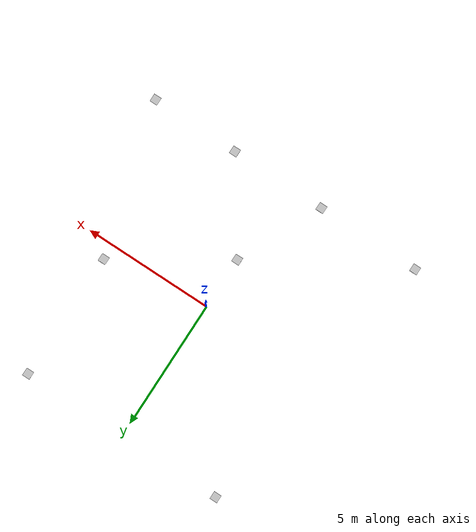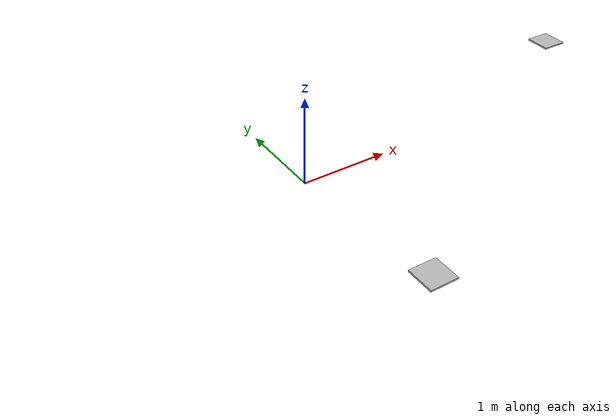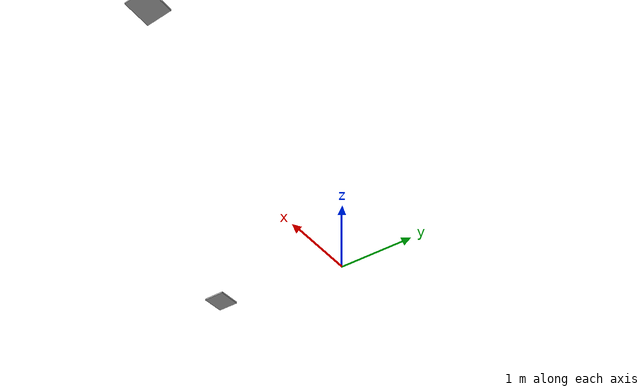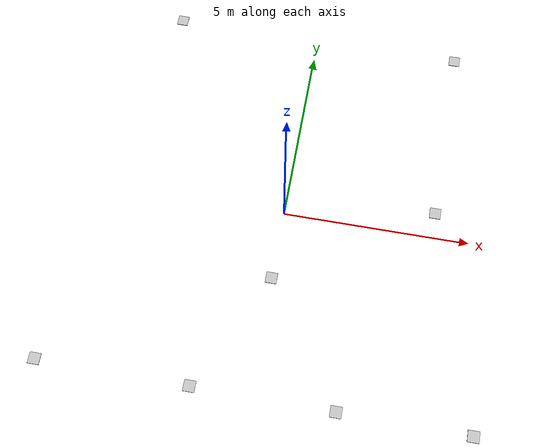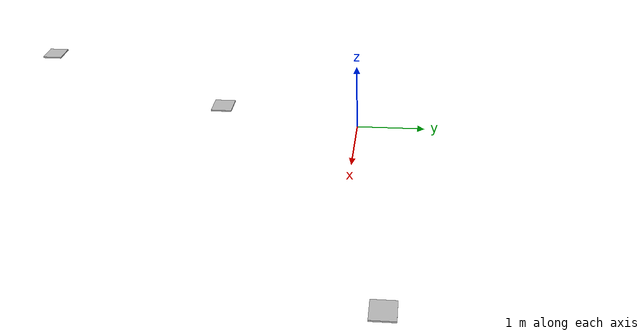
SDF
<?xml version="1.0"?>
<sdf version="1.5">
    <model name="qr">
        <static>true</static>
        <link name="link">
            <collision name="collision1">
                <pose>-4 5.5 0.27 0 0 0</pose>
                <geometry>
                    <mesh>
                        <uri>model://qr_1/meshes/qr.stl</uri>
                    </mesh>
                </geometry>
            </collision>
            <visual name="visual1">

              <pose>-4 5.5 0.27 0 0 0</pose>
              <geometry>
              <mesh>
                 <uri>model://qr_1/meshes/qr2.dae</uri>
              </mesh>
              </geometry>

              <material>
                  <script>
                      <uri>model://qr_1/materials/scripts</uri>
                      <uri>model://qr_1/materials/textures</uri>
                      <name>qrMat/Diffuse</name>
                  </script>
              </material>
             </visual>

             <collision name="collision2">
                <pose>4 5.5 0.27 0 0 0</pose>
                <geometry>
                    <mesh>
                        <uri>model://qr_1/meshes/qr.stl</uri>
                    </mesh>
                </geometry>
            </collision>
             <visual name="visual2">

              <pose>4 5.5 0.27 0 0 0</pose>
              <geometry>
              <mesh>
                 <uri>model://qr_1/meshes/qr4.dae</uri>
              </mesh>
              </geometry>

              <material>
                  <script>
                      <uri>model://qr_1/materials/scripts</uri>
                      <uri>model://qr_1/materials/textures</uri>
                      <name>qrMat/Diffuse</name>
                  </script>
              </material>
             </visual>

             <collision name="collision3">
                <pose>4 0.6 0.27 0 0 0</pose>
                <geometry>
                    <mesh>
                        <uri>model://qr_1/meshes/qr.stl</uri>
                    </mesh>
                </geometry>
            </collision>
            <visual name="visual3">

              <pose>4 0.6 0.27 0 0 0</pose>
              <geometry>
              <mesh>
                 <uri>model://qr_1/meshes/qr5.dae</uri>
              </mesh>
              </geometry>

              <material>
                  <script>
                      <uri>model://qr_1/materials/scripts</uri>
                      <uri>model://qr_1/materials/textures</uri>
                      <name>qrMat/Diffuse</name>
                  </script>
              </material>
             </visual>

             <collision name="collision5">
                <pose>0 -2 0.27 0 0 0</pose>
                <geometry>
                    <mesh>
                        <uri>model://qr_1/meshes/qr.stl</uri>
                    </mesh>
                </geometry>
            </collision>
            <visual name="visual5">

              <pose>0 -2 0.27 0 0 0</pose>
              <geometry>
              <mesh>
                 <uri>model://qr_1/meshes/qr6.dae</uri>
              </mesh>
              </geometry>

              <material>
                  <script>
                      <uri>model://qr_1/materials/scripts</uri>
                      <uri>model://qr_1/materials/textures</uri>
                      <name>qrMat/Diffuse</name>
                  </script>
              </material>
             </visual>

             <collision name="collision6">
                <pose>-5.5 -5.2 0.27 0 0 0</pose>
                <geometry>
                    <mesh>
                        <uri>model://qr_1/meshes/qr.stl</uri>
                    </mesh>
                </geometry>
            </collision>
            <visual name="visual6">

              <pose>-5.5 -5.2 0.27 0 0 0</pose>
              <geometry>
              <mesh>
                 <uri>model://qr_1/meshes/qr15.dae</uri>
              </mesh>
              </geometry>

              <material>
                  <script>
                      <uri>model://qr_1/materials/scripts</uri>
                      <uri>model://qr_1/materials/textures</uri>
                      <name>qrMat/Diffuse</name>
                  </script>
              </material>
             </visual>

             <collision name="collision7">
                <pose>-1.5 -5.2 0.27 0 0 0</pose>
                <geometry>
                    <mesh>
                        <uri>model://qr_1/meshes/qr.stl</uri>
                    </mesh>
                </geometry>
            </collision>
             <visual name="visual7">

              <pose>-1.5 -5.2 0.27 0 0 0</pose>
              <geometry>
              <mesh>
                 <uri>model://qr_1/meshes/qr14.dae</uri>
              </mesh>
              </geometry>

              <material>
                  <script>
                      <uri>model://qr_1/materials/scripts</uri>
                      <uri>model://qr_1/materials/textures</uri>
                      <name>qrMat/Diffuse</name>
                  </script>
              </material>
             </visual>

             <collision name="collision8">
                <pose>2.2 -5.2 0.27 0 0 0</pose>
                <geometry>
                    <mesh>
                        <uri>model://qr_1/meshes/qr.stl</uri>
                    </mesh>
                </geometry>
            </collision>
            <visual name="visual8">

              <pose>2.2 -5.2 0.27 0 0 0</pose>
              <geometry>
              <mesh>
                 <uri>model://qr_1/meshes/qr13.dae</uri>
              </mesh>
              </geometry>

              <material>
                  <script>
                      <uri>model://qr_1/materials/scripts</uri>
                      <uri>model://qr_1/materials/textures</uri>
                      <name>qrMat/Diffuse</name>
                  </script>
              </material>
             </visual>

             <collision name="collision9">
                <pose>5.6 -5.2 0.27 0 0 0</pose>
                <geometry>
                    <mesh>
                        <uri>model://qr_1/meshes/qr.stl</uri>
                    </mesh>
                </geometry>
            </collision>
            <visual name="visual9">

              <pose>5.6 -5.2 0.27 0 0 0</pose>
              <geometry>
              <mesh>
                 <uri>model://qr_1/meshes/qr12.dae</uri>
              </mesh>
              </geometry>

              <material>
                  <script>
                      <uri>model://qr_1/materials/scripts</uri>
                      <uri>model://qr_1/materials/textures</uri>
                      <name>qrMat/Diffuse</name>
                  </script>
              </material>
             </visual>
        </link>
    </model>
</sdf>
